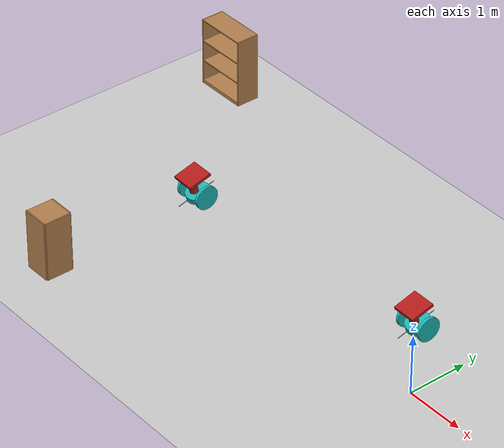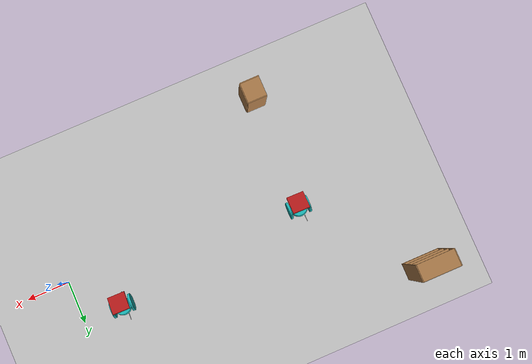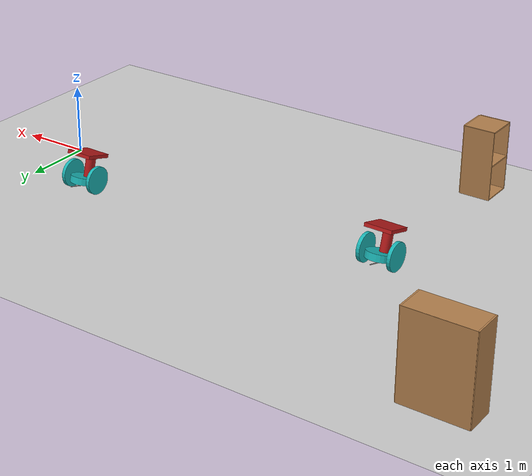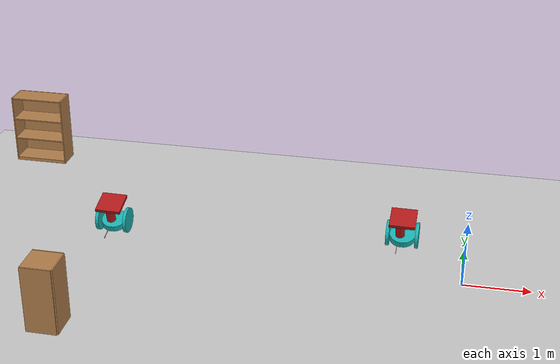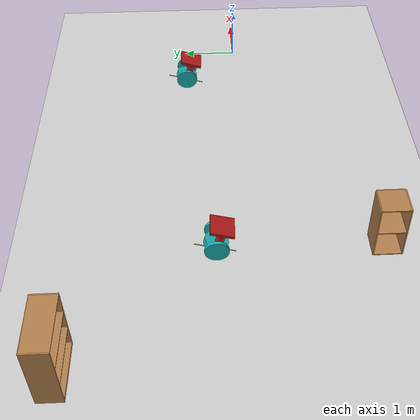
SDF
<sdf version="1.6">
 <world name="default">
  <model name="ground_plane">
   <static>1</static>
   <link name="link">
    <collision name="collision">
     <geometry><plane><normal>0 0 1</normal><size>100 100</size></plane></geometry>
     <surface><friction><ode><mu>100</mu><mu2>50</mu2></ode></friction></surface>
    </collision>
    <visual name="visual">
     <cast_shadows>0</cast_shadows>
     <geometry><plane><normal>0 0 1</normal><size>100 100</size></plane></geometry>
     <material>
      <script><uri>file://media/materials/scripts/gazebo.material</uri><name>Gazebo/Grey</name></script>
     </material>
    </visual>
   </link>
  </model>
  <model name="bookshelf">
   <static>1</static>
   <link name="link">
    <inertial><mass>1</mass></inertial>
    <collision name="back">
     <pose>0 0.005 0.6 0 -0 0</pose>
     <geometry><box><size>0.9 0.01 1.2</size></box></geometry>
    </collision>
    <visual name="visual1">
     <pose>0 0.005 0.6 0 -0 0</pose>
     <geometry><box><size>0.9 0.01 1.2</size></box></geometry>
     <material>
      <script><uri>file://media/materials/scripts/gazebo.material</uri><name>Gazebo/Wood</name></script>
     </material>
    </visual>
    <collision name="left_side">
     <pose>0.45 -0.195 0.6 0 -0 0</pose>
     <geometry><box><size>0.02 0.4 1.2</size></box></geometry>
    </collision>
    <visual name="visual2">
     <pose>0.45 -0.195 0.6 0 -0 0</pose>
     <geometry><box><size>0.02 0.4 1.2</size></box></geometry>
     <material>
      <script><uri>file://media/materials/scripts/gazebo.material</uri><name>Gazebo/Wood</name></script>
     </material>
    </visual>
    <collision name="right_side">
     <pose>-0.45 -0.195 0.6 0 -0 0</pose>
     <geometry><box><size>0.02 0.4 1.2</size></box></geometry>
    </collision>
    <visual name="visual3">
     <pose>-0.45 -0.195 0.6 0 -0 0</pose>
     <geometry><box><size>0.02 0.4 1.2</size></box></geometry>
     <material>
      <script><uri>file://media/materials/scripts/gazebo.material</uri><name>Gazebo/Wood</name></script>
     </material>
    </visual>
    <collision name="bottom">
     <pose>0 -0.195 0.03 0 -0 0</pose>
     <geometry><box><size>0.88 0.4 0.06</size></box></geometry>
    </collision>
    <visual name="visual4">
     <pose>0 -0.195 0.03 0 -0 0</pose>
     <geometry><box><size>0.88 0.4 0.06</size></box></geometry>
     <material>
      <script><uri>file://media/materials/scripts/gazebo.material</uri><name>Gazebo/Wood</name></script>
     </material>
    </visual>
    <collision name="top">
     <pose>0 -0.195 1.19 0 -0 0</pose>
     <geometry><box><size>0.88 0.4 0.02</size></box></geometry>
    </collision>
    <visual name="visual5">
     <pose>0 -0.195 1.19 0 -0 0</pose>
     <geometry><box><size>0.88 0.4 0.02</size></box></geometry>
     <material>
      <script><uri>file://media/materials/scripts/gazebo.material</uri><name>Gazebo/Wood</name></script>
     </material>
    </visual>
    <collision name="low_shelf">
     <pose>0 -0.195 0.43 0 -0 0</pose>
     <geometry><box><size>0.88 0.4 0.02</size></box></geometry>
    </collision>
    <visual name="visual6">
     <pose>0 -0.195 0.43 0 -0 0</pose>
     <geometry><box><size>0.88 0.4 0.02</size></box></geometry>
     <material>
      <script><uri>file://media/materials/scripts/gazebo.material</uri><name>Gazebo/Wood</name></script>
     </material>
    </visual>
    <collision name="high_shelf">
     <pose>0 -0.195 0.8 0 -0 0</pose>
     <geometry><box><size>0.88 0.4 0.02</size></box></geometry>
    </collision>
    <visual name="visual7">
     <pose>0 -0.195 0.8 0 -0 0</pose>
     <geometry><box><size>0.88 0.4 0.02</size></box></geometry>
     <material>
      <script><uri>file://media/materials/scripts/gazebo.material</uri><name>Gazebo/Wood</name></script>
     </material>
    </visual>
   </link>
   <pose>-7.63263 3.03401 0 0 -0 0</pose>
  </model>
  <model name="cabinet">
   <static>1</static>
   <link name="cabinet_bottom_plate">
    <inertial>
     <pose>0 0 -1 0 -0 0</pose>
     <inertia><ixx>2.05</ixx><ixy>0</ixy><ixz>0</ixz><iyy>2.05</iyy><iyz>0</iyz><izz>2.05</izz></inertia>
     <mass>25</mass>
    </inertial>
    <collision name="cabinet_bottom_plate_geom">
     <pose>0 0 0.01 0 -0 0</pose>
     <geometry><box><size>0.45 0.45 0.02</size></box></geometry>
    </collision>
    <visual name="cabinet_bottom_plate_geom_visual">
     <pose>0 0 0.01 0 -0 0</pose>
     <geometry><box><size>0.45 0.45 0.02</size></box></geometry>
     <material>
      <script><uri>file://media/materials/scripts/gazebo.material</uri><name>Gazebo/Wood</name></script>
     </material>
    </visual>
    <collision name="cabinet_bottom_plate_geom_cabinet_back_plate">
     <pose>0.235 0 0.51 0 -0 0</pose>
     <geometry><box><size>0.02 0.45 1.02</size></box></geometry>
    </collision>
    <visual name="cabinet_bottom_plate_geom_cabinet_back_plate_visual">
     <pose>0.235 0 0.51 0 -0 0</pose>
     <geometry><box><size>0.02 0.45 1.02</size></box></geometry>
     <material>
      <script><uri>file://media/materials/scripts/gazebo.material</uri><name>Gazebo/Wood</name></script>
     </material>
    </visual>
    <collision name="cabinet_bottom_plate_geom_cabinet_left_plate">
     <pose>0 0.235 0.51 0 -0 0</pose>
     <geometry><box><size>0.45 0.02 1.02</size></box></geometry>
    </collision>
    <visual name="cabinet_bottom_plate_geom_cabinet_left_plate_visual">
     <pose>0 0.235 0.51 0 -0 0</pose>
     <geometry><box><size>0.45 0.02 1.02</size></box></geometry>
     <material>
      <script><uri>file://media/materials/scripts/gazebo.material</uri><name>Gazebo/Wood</name></script>
     </material>
    </visual>
    <collision name="cabinet_bottom_plate_geom_cabinet_middle_plate">
     <pose>0 0 0.51 0 -0 0</pose>
     <geometry><box><size>0.45 0.45 0.02</size></box></geometry>
    </collision>
    <visual name="cabinet_bottom_plate_geom_cabinet_middle_plate_visual">
     <pose>0 0 0.51 0 -0 0</pose>
     <geometry><box><size>0.45 0.45 0.02</size></box></geometry>
     <material>
      <script><uri>file://media/materials/scripts/gazebo.material</uri><name>Gazebo/Wood</name></script>
     </material>
    </visual>
    <collision name="cabinet_bottom_plate_geom_cabinet_right_plate">
     <pose>0 -0.235 0.51 0 -0 0</pose>
     <geometry><box><size>0.45 0.02 1.02</size></box></geometry>
    </collision>
    <visual name="cabinet_bottom_plate_geom_cabinet_right_plate_visual">
     <pose>0 -0.235 0.51 0 -0 0</pose>
     <geometry><box><size>0.45 0.02 1.02</size></box></geometry>
     <material>
      <script><uri>file://media/materials/scripts/gazebo.material</uri><name>Gazebo/Wood</name></script>
     </material>
    </visual>
    <collision name="cabinet_bottom_plate_geom_cabinet_top_plate">
     <pose>0 0 1.01 0 -0 0</pose>
     <geometry><box><size>0.45 0.45 0.02</size></box></geometry>
    </collision>
    <visual name="cabinet_bottom_plate_geom_cabinet_top_plate_visual">
     <pose>0 0 1.01 0 -0 0</pose>
     <geometry><box><size>0.45 0.45 0.02</size></box></geometry>
     <material>
      <script><uri>file://media/materials/scripts/gazebo.material</uri><name>Gazebo/Wood</name></script>
     </material>
    </visual>
   </link>
   <pose>-5.54527 -2.22271 0 0 -0 0</pose>
  </model>
  <model name="circlebot">
   <link name="link_0">
    <pose>1.06129 -0.214025 0.27147 0 -0 0</pose>
    <inertial>
     <mass>1</mass>
     <inertia><ixx>0.145833</ixx><ixy>0</ixy><ixz>0</ixz><iyy>0.145833</iyy><iyz>0</iyz><izz>0.125</izz></inertia>
    </inertial>
    <visual name="visual">
     <geometry><cylinder><radius>0.2</radius><length>0.1</length></cylinder></geometry>
     <material>
      <lighting>1</lighting>
      <script><uri>file://media/materials/scripts/gazebo.material</uri><name>Gazebo/Grey</name></script>
      <shader type="pixel"><normal_map>__default__</normal_map></shader>
      <ambient>0.3 0.7 0.7 1</ambient>
      <diffuse>0.1 0.7 0.7 1</diffuse>
      <specular>0.01 0.01 0.01 1</specular>
      <emissive>0 0 0 1</emissive>
     </material>
    </visual>
    <collision name="collision">
     <geometry><cylinder><radius>0.2</radius><length>0.1</length></cylinder></geometry>
     <surface>
      <friction>
       <ode><mu>1</mu><mu2>1</mu2><fdir1>0 0 0</fdir1><slip1>0</slip1><slip2>0</slip2></ode>
       <torsional>
        <coefficient>1</coefficient>
        <patch_radius>0</patch_radius>
        <surface_radius>0</surface_radius>
        <use_patch_radius>1</use_patch_radius>
        <ode><slip>0</slip></ode>
       </torsional>
      </friction>
      <bounce><restitution_coefficient>0</restitution_coefficient><threshold>1e+06</threshold></bounce>
      <contact>
       <collide_without_contact>0</collide_without_contact>
       <collide_without_contact_bitmask>1</collide_without_contact_bitmask>
       <collide_bitmask>1</collide_bitmask>
       <ode>
        <soft_cfm>0</soft_cfm>
        <soft_erp>0.2</soft_erp>
        <kp>1e+13</kp>
        <kd>1</kd>
        <max_vel>0.01</max_vel>
        <min_depth>0</min_depth>
       </ode>
       <bullet>
        <split_impulse>1</split_impulse>
        <split_impulse_penetration_threshold>-0.01</split_impulse_penetration_threshold>
        <soft_cfm>0</soft_cfm>
        <soft_erp>0.2</soft_erp>
        <kp>1e+13</kp>
        <kd>1</kd>
       </bullet>
      </contact>
     </surface>
    </collision>
   </link>
   <link name="link_0_0">
    <pose>0.993988 -0.214025 0.213031 -1.5708 0.010835 3e-06</pose>
    <inertial>
     <mass>1</mass>
     <inertia>
      <ixx>0.166667</ixx>
      <ixy>0</ixy>
      <ixz>0</ixz>
      <iyy>0.166667</iyy>
      <iyz>0</iyz>
      <izz>0.166667</izz>
     </inertia>
    </inertial>
    <visual name="visual">
     <geometry><box><size>0.01 0.01 0.7</size></box></geometry>
     <material>
      <lighting>1</lighting>
      <script><uri>file://media/materials/scripts/gazebo.material</uri><name>Gazebo/Grey</name></script>
      <shader type="pixel"><normal_map>__default__</normal_map></shader>
      <ambient>0.3 0.3 0.3 1</ambient>
      <diffuse>0.7 0.7 0.7 1</diffuse>
      <specular>0.01 0.01 0.01 1</specular>
      <emissive>0 0 0 1</emissive>
     </material>
    </visual>
    <collision name="collision">
     <geometry><box><size>0.01 0.01 0.7</size></box></geometry>
     <surface>
      <friction>
       <ode><mu>1</mu><mu2>1</mu2><fdir1>0 0 0</fdir1><slip1>0</slip1><slip2>0</slip2></ode>
       <torsional>
        <coefficient>1</coefficient>
        <patch_radius>0</patch_radius>
        <surface_radius>0</surface_radius>
        <use_patch_radius>1</use_patch_radius>
        <ode><slip>0</slip></ode>
       </torsional>
      </friction>
      <bounce><restitution_coefficient>0</restitution_coefficient><threshold>1e+06</threshold></bounce>
      <contact>
       <collide_without_contact>0</collide_without_contact>
       <collide_without_contact_bitmask>1</collide_without_contact_bitmask>
       <collide_bitmask>1</collide_bitmask>
       <ode>
        <soft_cfm>0</soft_cfm>
        <soft_erp>0.2</soft_erp>
        <kp>1e+13</kp>
        <kd>1</kd>
        <max_vel>0.01</max_vel>
        <min_depth>0</min_depth>
       </ode>
       <bullet>
        <split_impulse>1</split_impulse>
        <split_impulse_penetration_threshold>-0.01</split_impulse_penetration_threshold>
        <soft_cfm>0</soft_cfm>
        <soft_erp>0.2</soft_erp>
        <kp>1e+13</kp>
        <kd>1</kd>
       </bullet>
      </contact>
     </surface>
    </collision>
   </link>
   <link name="link_2">
    <pose>1.28631 -0.214025 0.316464 -0.000138 1.5707 -0.000138</pose>
    <inertial>
     <mass>1</mass>
     <inertia><ixx>0.145833</ixx><ixy>0</ixy><ixz>0</ixz><iyy>0.145833</iyy><iyz>0</iyz><izz>0.125</izz></inertia>
    </inertial>
    <visual name="visual">
     <geometry><cylinder><radius>0.2</radius><length>0.05</length></cylinder></geometry>
     <material>
      <lighting>1</lighting>
      <script><uri>file://media/materials/scripts/gazebo.material</uri><name>Gazebo/Grey</name></script>
      <shader type="pixel"><normal_map>__default__</normal_map></shader>
      <ambient>0.3 0.7 0.7 1</ambient>
      <diffuse>0.1 0.7 0.7 1</diffuse>
      <specular>0.01 0.01 0.01 1</specular>
      <emissive>0 0 0 1</emissive>
     </material>
    </visual>
    <collision name="collision">
     <geometry><cylinder><radius>0.2</radius><length>0.05</length></cylinder></geometry>
     <surface>
      <friction>
       <ode><mu>1</mu><mu2>1</mu2><fdir1>0 0 0</fdir1><slip1>0</slip1><slip2>0</slip2></ode>
       <torsional>
        <coefficient>1</coefficient>
        <patch_radius>0</patch_radius>
        <surface_radius>0</surface_radius>
        <use_patch_radius>1</use_patch_radius>
        <ode><slip>0</slip></ode>
       </torsional>
      </friction>
      <bounce><restitution_coefficient>0</restitution_coefficient><threshold>1e+06</threshold></bounce>
      <contact>
       <collide_without_contact>0</collide_without_contact>
       <collide_without_contact_bitmask>1</collide_without_contact_bitmask>
       <collide_bitmask>1</collide_bitmask>
       <ode>
        <soft_cfm>0</soft_cfm>
        <soft_erp>0.2</soft_erp>
        <kp>1e+13</kp>
        <kd>1</kd>
        <max_vel>0.01</max_vel>
        <min_depth>0</min_depth>
       </ode>
       <bullet>
        <split_impulse>1</split_impulse>
        <split_impulse_penetration_threshold>-0.01</split_impulse_penetration_threshold>
        <soft_cfm>0</soft_cfm>
        <soft_erp>0.2</soft_erp>
        <kp>1e+13</kp>
        <kd>1</kd>
       </bullet>
      </contact>
     </surface>
    </collision>
   </link>
   <link name="link_2_clone">
    <pose>0.836287 -0.214025 0.31647 -0.000138 1.5707 -0.000138</pose>
    <inertial>
     <mass>1</mass>
     <inertia><ixx>0.145833</ixx><ixy>0</ixy><ixz>0</ixz><iyy>0.145833</iyy><iyz>0</iyz><izz>0.125</izz></inertia>
    </inertial>
    <visual name="visual">
     <geometry><cylinder><radius>0.2</radius><length>0.05</length></cylinder></geometry>
     <material>
      <lighting>1</lighting>
      <script><uri>file://media/materials/scripts/gazebo.material</uri><name>Gazebo/Grey</name></script>
      <shader type="pixel"><normal_map>__default__</normal_map></shader>
      <ambient>0.3 0.7 0.7 1</ambient>
      <diffuse>0.1 0.7 0.7 1</diffuse>
      <specular>0.01 0.01 0.01 1</specular>
      <emissive>0 0 0 1</emissive>
     </material>
    </visual>
    <collision name="collision">
     <geometry><cylinder><radius>0.2</radius><length>0.05</length></cylinder></geometry>
     <surface>
      <friction>
       <ode><mu>1</mu><mu2>1</mu2><fdir1>0 0 0</fdir1><slip1>0</slip1><slip2>0</slip2></ode>
       <torsional>
        <coefficient>1</coefficient>
        <patch_radius>0</patch_radius>
        <surface_radius>0</surface_radius>
        <use_patch_radius>1</use_patch_radius>
        <ode><slip>0</slip></ode>
       </torsional>
      </friction>
      <bounce><restitution_coefficient>0</restitution_coefficient><threshold>1e+06</threshold></bounce>
      <contact>
       <collide_without_contact>0</collide_without_contact>
       <collide_without_contact_bitmask>1</collide_without_contact_bitmask>
       <collide_bitmask>1</collide_bitmask>
       <ode>
        <soft_cfm>0</soft_cfm>
        <soft_erp>0.2</soft_erp>
        <kp>1e+13</kp>
        <kd>1</kd>
        <max_vel>0.01</max_vel>
        <min_depth>0</min_depth>
       </ode>
       <bullet>
        <split_impulse>1</split_impulse>
        <split_impulse_penetration_threshold>-0.01</split_impulse_penetration_threshold>
        <soft_cfm>0</soft_cfm>
        <soft_erp>0.2</soft_erp>
        <kp>1e+13</kp>
        <kd>1</kd>
       </bullet>
      </contact>
     </surface>
    </collision>
   </link>
   <link name="link_3">
    <pose>1.02629 -0.249025 0.42147 0 -0 0</pose>
    <inertial>
     <mass>1</mass>
     <inertia><ixx>0.145833</ixx><ixy>0</ixy><ixz>0</ixz><iyy>0.145833</iyy><iyz>0</iyz><izz>0.125</izz></inertia>
    </inertial>
    <visual name="visual">
     <geometry><cylinder><radius>0.07</radius><length>0.4</length></cylinder></geometry>
     <material>
      <lighting>1</lighting>
      <script><uri>file://media/materials/scripts/gazebo.material</uri><name>Gazebo/Grey</name></script>
      <shader type="pixel"><normal_map>__default__</normal_map></shader>
      <ambient>0.7 0.1 0.1 1</ambient>
      <diffuse>0.7 0.1 0.1 1</diffuse>
      <specular>0.01 0.01 0.01 1</specular>
      <emissive>0 0 0 1</emissive>
     </material>
    </visual>
    <collision name="collision">
     <geometry><cylinder><radius>0.07</radius><length>0.4</length></cylinder></geometry>
     <surface>
      <friction>
       <ode><mu>1</mu><mu2>1</mu2><fdir1>0 0 0</fdir1><slip1>0</slip1><slip2>0</slip2></ode>
       <torsional>
        <coefficient>1</coefficient>
        <patch_radius>0</patch_radius>
        <surface_radius>0</surface_radius>
        <use_patch_radius>1</use_patch_radius>
        <ode><slip>0</slip></ode>
       </torsional>
      </friction>
      <bounce><restitution_coefficient>0</restitution_coefficient><threshold>1e+06</threshold></bounce>
      <contact>
       <collide_without_contact>0</collide_without_contact>
       <collide_without_contact_bitmask>1</collide_without_contact_bitmask>
       <collide_bitmask>1</collide_bitmask>
       <ode>
        <soft_cfm>0</soft_cfm>
        <soft_erp>0.2</soft_erp>
        <kp>1e+13</kp>
        <kd>1</kd>
        <max_vel>0.01</max_vel>
        <min_depth>0</min_depth>
       </ode>
       <bullet>
        <split_impulse>1</split_impulse>
        <split_impulse_penetration_threshold>-0.01</split_impulse_penetration_threshold>
        <soft_cfm>0</soft_cfm>
        <soft_erp>0.2</soft_erp>
        <kp>1e+13</kp>
        <kd>1</kd>
       </bullet>
      </contact>
     </surface>
    </collision>
   </link>
   <link name="link_4">
    <pose>1.06129 -0.214025 0.64647 0 -0 0</pose>
    <inertial>
     <mass>1</mass>
     <inertia>
      <ixx>0.166667</ixx>
      <ixy>0</ixy>
      <ixz>0</ixz>
      <iyy>0.166667</iyy>
      <iyz>0</iyz>
      <izz>0.166667</izz>
     </inertia>
    </inertial>
    <visual name="visual">
     <geometry><box><size>0.4 0.4 0.05</size></box></geometry>
     <material>
      <lighting>1</lighting>
      <script><uri>file://media/materials/scripts/gazebo.material</uri><name>Gazebo/Grey</name></script>
      <shader type="pixel"><normal_map>__default__</normal_map></shader>
      <ambient>0.7 0.1 0.1 1</ambient>
      <diffuse>0.7 0.1 0.1 1</diffuse>
      <specular>0.01 0.01 0.01 1</specular>
      <emissive>0 0 0 1</emissive>
     </material>
    </visual>
    <collision name="collision">
     <geometry><box><size>0.4 0.4 0.05</size></box></geometry>
     <surface>
      <friction>
       <ode><mu>1</mu><mu2>1</mu2><fdir1>0 0 0</fdir1><slip1>0</slip1><slip2>0</slip2></ode>
       <torsional>
        <coefficient>1</coefficient>
        <patch_radius>0</patch_radius>
        <surface_radius>0</surface_radius>
        <use_patch_radius>1</use_patch_radius>
        <ode><slip>0</slip></ode>
       </torsional>
      </friction>
      <bounce><restitution_coefficient>0</restitution_coefficient><threshold>1e+06</threshold></bounce>
      <contact>
       <collide_without_contact>0</collide_without_contact>
       <collide_without_contact_bitmask>1</collide_without_contact_bitmask>
       <collide_bitmask>1</collide_bitmask>
       <ode>
        <soft_cfm>0</soft_cfm>
        <soft_erp>0.2</soft_erp>
        <kp>1e+13</kp>
        <kd>1</kd>
        <max_vel>0.01</max_vel>
        <min_depth>0</min_depth>
       </ode>
       <bullet>
        <split_impulse>1</split_impulse>
        <split_impulse_penetration_threshold>-0.01</split_impulse_penetration_threshold>
        <soft_cfm>0</soft_cfm>
        <soft_erp>0.2</soft_erp>
        <kp>1e+13</kp>
        <kd>1</kd>
       </bullet>
      </contact>
     </surface>
    </collision>
   </link>
   <joint name="link_0_JOINT_0_0" type="fixed">
    <parent>link_0</parent>
    <child>link_0_0</child>
    <physics>
     <ode><limit><cfm>0</cfm><erp>0.2</erp></limit><suspension><cfm>0</cfm><erp>0.2</erp></suspension></ode>
    </physics>
   </joint>
   <joint name="link_0_JOINT_0" type="revolute">
    <parent>link_0</parent>
    <child>link_2_clone</child>
    <axis>
     <xyz>0 0 1</xyz>
     <use_parent_model_frame>0</use_parent_model_frame>
     <limit>
      <lower>-1.79769e+308</lower>
      <upper>1.79769e+308</upper>
      <effort>-1</effort>
      <velocity>-1</velocity>
     </limit>
     <dynamics>
      <spring_reference>0</spring_reference>
      <spring_stiffness>0</spring_stiffness>
      <damping>0</damping>
      <friction>0</friction>
     </dynamics>
    </axis>
    <physics>
     <ode><limit><cfm>0</cfm><erp>0.2</erp></limit><suspension><cfm>0</cfm><erp>0.2</erp></suspension></ode>
    </physics>
   </joint>
   <joint name="link_0_JOINT_1" type="revolute">
    <parent>link_0</parent>
    <child>link_2</child>
    <axis>
     <xyz>0 0 1</xyz>
     <use_parent_model_frame>0</use_parent_model_frame>
     <limit>
      <lower>-1.79769e+308</lower>
      <upper>1.79769e+308</upper>
      <effort>-1</effort>
      <velocity>-1</velocity>
     </limit>
     <dynamics>
      <spring_reference>0</spring_reference>
      <spring_stiffness>0</spring_stiffness>
      <damping>0</damping>
      <friction>0</friction>
     </dynamics>
    </axis>
    <physics>
     <ode><limit><cfm>0</cfm><erp>0.2</erp></limit><suspension><cfm>0</cfm><erp>0.2</erp></suspension></ode>
    </physics>
   </joint>
   <joint name="link_0_JOINT_2" type="fixed">
    <parent>link_0</parent>
    <child>link_3</child>
    <physics>
     <ode><limit><cfm>0</cfm><erp>0.2</erp></limit><suspension><cfm>0</cfm><erp>0.2</erp></suspension></ode>
    </physics>
   </joint>
   <joint name="link_3_JOINT_3" type="fixed">
    <parent>link_3</parent>
    <child>link_4</child>
    <physics>
     <ode><limit><cfm>0</cfm><erp>0.2</erp></limit><suspension><cfm>0</cfm><erp>0.2</erp></suspension></ode>
    </physics>
   </joint>
   <static>0</static>
   <pose>-6.55969 0.819403 -0.045944 0.276784 -8e-06 -0.016892</pose>
  </model>
  <model name="circlebot_0">
   <link name="link_0">
    <pose>1.06129 -0.214025 0.27147 0 -0 0</pose>
    <inertial>
     <mass>1</mass>
     <inertia><ixx>0.145833</ixx><ixy>0</ixy><ixz>0</ixz><iyy>0.145833</iyy><iyz>0</iyz><izz>0.125</izz></inertia>
    </inertial>
    <visual name="visual">
     <geometry><cylinder><radius>0.2</radius><length>0.1</length></cylinder></geometry>
     <material>
      <lighting>1</lighting>
      <script><uri>file://media/materials/scripts/gazebo.material</uri><name>Gazebo/Grey</name></script>
      <shader type="pixel"><normal_map>__default__</normal_map></shader>
      <ambient>0.3 0.7 0.7 1</ambient>
      <diffuse>0.1 0.7 0.7 1</diffuse>
      <specular>0.01 0.01 0.01 1</specular>
      <emissive>0 0 0 1</emissive>
     </material>
    </visual>
    <collision name="collision">
     <geometry><cylinder><radius>0.2</radius><length>0.1</length></cylinder></geometry>
     <surface>
      <friction>
       <ode><mu>1</mu><mu2>1</mu2><fdir1>0 0 0</fdir1><slip1>0</slip1><slip2>0</slip2></ode>
       <torsional>
        <coefficient>1</coefficient>
        <patch_radius>0</patch_radius>
        <surface_radius>0</surface_radius>
        <use_patch_radius>1</use_patch_radius>
        <ode><slip>0</slip></ode>
       </torsional>
      </friction>
      <bounce><restitution_coefficient>0</restitution_coefficient><threshold>1e+06</threshold></bounce>
      <contact>
       <collide_without_contact>0</collide_without_contact>
       <collide_without_contact_bitmask>1</collide_without_contact_bitmask>
       <collide_bitmask>1</collide_bitmask>
       <ode>
        <soft_cfm>0</soft_cfm>
        <soft_erp>0.2</soft_erp>
        <kp>1e+13</kp>
        <kd>1</kd>
        <max_vel>0.01</max_vel>
        <min_depth>0</min_depth>
       </ode>
       <bullet>
        <split_impulse>1</split_impulse>
        <split_impulse_penetration_threshold>-0.01</split_impulse_penetration_threshold>
        <soft_cfm>0</soft_cfm>
        <soft_erp>0.2</soft_erp>
        <kp>1e+13</kp>
        <kd>1</kd>
       </bullet>
      </contact>
     </surface>
    </collision>
   </link>
   <link name="link_0_0">
    <pose>0.993988 -0.214025 0.213031 -1.5708 0.010835 3e-06</pose>
    <inertial>
     <mass>1</mass>
     <inertia>
      <ixx>0.166667</ixx>
      <ixy>0</ixy>
      <ixz>0</ixz>
      <iyy>0.166667</iyy>
      <iyz>0</iyz>
      <izz>0.166667</izz>
     </inertia>
    </inertial>
    <visual name="visual">
     <geometry><box><size>0.01 0.01 0.7</size></box></geometry>
     <material>
      <lighting>1</lighting>
      <script><uri>file://media/materials/scripts/gazebo.material</uri><name>Gazebo/Grey</name></script>
      <shader type="pixel"><normal_map>__default__</normal_map></shader>
      <ambient>0.3 0.3 0.3 1</ambient>
      <diffuse>0.7 0.7 0.7 1</diffuse>
      <specular>0.01 0.01 0.01 1</specular>
      <emissive>0 0 0 1</emissive>
     </material>
    </visual>
    <collision name="collision">
     <geometry><box><size>0.01 0.01 0.7</size></box></geometry>
     <surface>
      <friction>
       <ode><mu>1</mu><mu2>1</mu2><fdir1>0 0 0</fdir1><slip1>0</slip1><slip2>0</slip2></ode>
       <torsional>
        <coefficient>1</coefficient>
        <patch_radius>0</patch_radius>
        <surface_radius>0</surface_radius>
        <use_patch_radius>1</use_patch_radius>
        <ode><slip>0</slip></ode>
       </torsional>
      </friction>
      <bounce><restitution_coefficient>0</restitution_coefficient><threshold>1e+06</threshold></bounce>
      <contact>
       <collide_without_contact>0</collide_without_contact>
       <collide_without_contact_bitmask>1</collide_without_contact_bitmask>
       <collide_bitmask>1</collide_bitmask>
       <ode>
        <soft_cfm>0</soft_cfm>
        <soft_erp>0.2</soft_erp>
        <kp>1e+13</kp>
        <kd>1</kd>
        <max_vel>0.01</max_vel>
        <min_depth>0</min_depth>
       </ode>
       <bullet>
        <split_impulse>1</split_impulse>
        <split_impulse_penetration_threshold>-0.01</split_impulse_penetration_threshold>
        <soft_cfm>0</soft_cfm>
        <soft_erp>0.2</soft_erp>
        <kp>1e+13</kp>
        <kd>1</kd>
       </bullet>
      </contact>
     </surface>
    </collision>
   </link>
   <link name="link_2">
    <pose>1.28631 -0.214025 0.316464 -0.000138 1.5707 -0.000138</pose>
    <inertial>
     <mass>1</mass>
     <inertia><ixx>0.145833</ixx><ixy>0</ixy><ixz>0</ixz><iyy>0.145833</iyy><iyz>0</iyz><izz>0.125</izz></inertia>
    </inertial>
    <visual name="visual">
     <geometry><cylinder><radius>0.2</radius><length>0.05</length></cylinder></geometry>
     <material>
      <lighting>1</lighting>
      <script><uri>file://media/materials/scripts/gazebo.material</uri><name>Gazebo/Grey</name></script>
      <shader type="pixel"><normal_map>__default__</normal_map></shader>
      <ambient>0.3 0.7 0.7 1</ambient>
      <diffuse>0.1 0.7 0.7 1</diffuse>
      <specular>0.01 0.01 0.01 1</specular>
      <emissive>0 0 0 1</emissive>
     </material>
    </visual>
    <collision name="collision">
     <geometry><cylinder><radius>0.2</radius><length>0.05</length></cylinder></geometry>
     <surface>
      <friction>
       <ode><mu>1</mu><mu2>1</mu2><fdir1>0 0 0</fdir1><slip1>0</slip1><slip2>0</slip2></ode>
       <torsional>
        <coefficient>1</coefficient>
        <patch_radius>0</patch_radius>
        <surface_radius>0</surface_radius>
        <use_patch_radius>1</use_patch_radius>
        <ode><slip>0</slip></ode>
       </torsional>
      </friction>
      <bounce><restitution_coefficient>0</restitution_coefficient><threshold>1e+06</threshold></bounce>
      <contact>
       <collide_without_contact>0</collide_without_contact>
       <collide_without_contact_bitmask>1</collide_without_contact_bitmask>
       <collide_bitmask>1</collide_bitmask>
       <ode>
        <soft_cfm>0</soft_cfm>
        <soft_erp>0.2</soft_erp>
        <kp>1e+13</kp>
        <kd>1</kd>
        <max_vel>0.01</max_vel>
        <min_depth>0</min_depth>
       </ode>
       <bullet>
        <split_impulse>1</split_impulse>
        <split_impulse_penetration_threshold>-0.01</split_impulse_penetration_threshold>
        <soft_cfm>0</soft_cfm>
        <soft_erp>0.2</soft_erp>
        <kp>1e+13</kp>
        <kd>1</kd>
       </bullet>
      </contact>
     </surface>
    </collision>
   </link>
   <link name="link_2_clone">
    <pose>0.836287 -0.214025 0.31647 -0.000138 1.5707 -0.000138</pose>
    <inertial>
     <mass>1</mass>
     <inertia><ixx>0.145833</ixx><ixy>0</ixy><ixz>0</ixz><iyy>0.145833</iyy><iyz>0</iyz><izz>0.125</izz></inertia>
    </inertial>
    <visual name="visual">
     <geometry><cylinder><radius>0.2</radius><length>0.05</length></cylinder></geometry>
     <material>
      <lighting>1</lighting>
      <script><uri>file://media/materials/scripts/gazebo.material</uri><name>Gazebo/Grey</name></script>
      <shader type="pixel"><normal_map>__default__</normal_map></shader>
      <ambient>0.3 0.7 0.7 1</ambient>
      <diffuse>0.1 0.7 0.7 1</diffuse>
      <specular>0.01 0.01 0.01 1</specular>
      <emissive>0 0 0 1</emissive>
     </material>
    </visual>
    <collision name="collision">
     <geometry><cylinder><radius>0.2</radius><length>0.05</length></cylinder></geometry>
     <surface>
      <friction>
       <ode><mu>1</mu><mu2>1</mu2><fdir1>0 0 0</fdir1><slip1>0</slip1><slip2>0</slip2></ode>
       <torsional>
        <coefficient>1</coefficient>
        <patch_radius>0</patch_radius>
        <surface_radius>0</surface_radius>
        <use_patch_radius>1</use_patch_radius>
        <ode><slip>0</slip></ode>
       </torsional>
      </friction>
      <bounce><restitution_coefficient>0</restitution_coefficient><threshold>1e+06</threshold></bounce>
      <contact>
       <collide_without_contact>0</collide_without_contact>
       <collide_without_contact_bitmask>1</collide_without_contact_bitmask>
       <collide_bitmask>1</collide_bitmask>
       <ode>
        <soft_cfm>0</soft_cfm>
        <soft_erp>0.2</soft_erp>
        <kp>1e+13</kp>
        <kd>1</kd>
        <max_vel>0.01</max_vel>
        <min_depth>0</min_depth>
       </ode>
       <bullet>
        <split_impulse>1</split_impulse>
        <split_impulse_penetration_threshold>-0.01</split_impulse_penetration_threshold>
        <soft_cfm>0</soft_cfm>
        <soft_erp>0.2</soft_erp>
        <kp>1e+13</kp>
        <kd>1</kd>
       </bullet>
      </contact>
     </surface>
    </collision>
   </link>
   <link name="link_3">
    <pose>1.02629 -0.249025 0.42147 0 -0 0</pose>
    <inertial>
     <mass>1</mass>
     <inertia><ixx>0.145833</ixx><ixy>0</ixy><ixz>0</ixz><iyy>0.145833</iyy><iyz>0</iyz><izz>0.125</izz></inertia>
    </inertial>
    <visual name="visual">
     <geometry><cylinder><radius>0.07</radius><length>0.4</length></cylinder></geometry>
     <material>
      <lighting>1</lighting>
      <script><uri>file://media/materials/scripts/gazebo.material</uri><name>Gazebo/Grey</name></script>
      <shader type="pixel"><normal_map>__default__</normal_map></shader>
      <ambient>0.7 0.1 0.1 1</ambient>
      <diffuse>0.7 0.1 0.1 1</diffuse>
      <specular>0.01 0.01 0.01 1</specular>
      <emissive>0 0 0 1</emissive>
     </material>
    </visual>
    <collision name="collision">
     <geometry><cylinder><radius>0.07</radius><length>0.4</length></cylinder></geometry>
     <surface>
      <friction>
       <ode><mu>1</mu><mu2>1</mu2><fdir1>0 0 0</fdir1><slip1>0</slip1><slip2>0</slip2></ode>
       <torsional>
        <coefficient>1</coefficient>
        <patch_radius>0</patch_radius>
        <surface_radius>0</surface_radius>
        <use_patch_radius>1</use_patch_radius>
        <ode><slip>0</slip></ode>
       </torsional>
      </friction>
      <bounce><restitution_coefficient>0</restitution_coefficient><threshold>1e+06</threshold></bounce>
      <contact>
       <collide_without_contact>0</collide_without_contact>
       <collide_without_contact_bitmask>1</collide_without_contact_bitmask>
       <collide_bitmask>1</collide_bitmask>
       <ode>
        <soft_cfm>0</soft_cfm>
        <soft_erp>0.2</soft_erp>
        <kp>1e+13</kp>
        <kd>1</kd>
        <max_vel>0.01</max_vel>
        <min_depth>0</min_depth>
       </ode>
       <bullet>
        <split_impulse>1</split_impulse>
        <split_impulse_penetration_threshold>-0.01</split_impulse_penetration_threshold>
        <soft_cfm>0</soft_cfm>
        <soft_erp>0.2</soft_erp>
        <kp>1e+13</kp>
        <kd>1</kd>
       </bullet>
      </contact>
     </surface>
    </collision>
   </link>
   <link name="link_4">
    <pose>1.06129 -0.214025 0.64647 0 -0 0</pose>
    <inertial>
     <mass>1</mass>
     <inertia>
      <ixx>0.166667</ixx>
      <ixy>0</ixy>
      <ixz>0</ixz>
      <iyy>0.166667</iyy>
      <iyz>0</iyz>
      <izz>0.166667</izz>
     </inertia>
    </inertial>
    <visual name="visual">
     <geometry><box><size>0.4 0.4 0.05</size></box></geometry>
     <material>
      <lighting>1</lighting>
      <script><uri>file://media/materials/scripts/gazebo.material</uri><name>Gazebo/Grey</name></script>
      <shader type="pixel"><normal_map>__default__</normal_map></shader>
      <ambient>0.7 0.1 0.1 1</ambient>
      <diffuse>0.7 0.1 0.1 1</diffuse>
      <specular>0.01 0.01 0.01 1</specular>
      <emissive>0 0 0 1</emissive>
     </material>
    </visual>
    <collision name="collision">
     <geometry><box><size>0.4 0.4 0.05</size></box></geometry>
     <surface>
      <friction>
       <ode><mu>1</mu><mu2>1</mu2><fdir1>0 0 0</fdir1><slip1>0</slip1><slip2>0</slip2></ode>
       <torsional>
        <coefficient>1</coefficient>
        <patch_radius>0</patch_radius>
        <surface_radius>0</surface_radius>
        <use_patch_radius>1</use_patch_radius>
        <ode><slip>0</slip></ode>
       </torsional>
      </friction>
      <bounce><restitution_coefficient>0</restitution_coefficient><threshold>1e+06</threshold></bounce>
      <contact>
       <collide_without_contact>0</collide_without_contact>
       <collide_without_contact_bitmask>1</collide_without_contact_bitmask>
       <collide_bitmask>1</collide_bitmask>
       <ode>
        <soft_cfm>0</soft_cfm>
        <soft_erp>0.2</soft_erp>
        <kp>1e+13</kp>
        <kd>1</kd>
        <max_vel>0.01</max_vel>
        <min_depth>0</min_depth>
       </ode>
       <bullet>
        <split_impulse>1</split_impulse>
        <split_impulse_penetration_threshold>-0.01</split_impulse_penetration_threshold>
        <soft_cfm>0</soft_cfm>
        <soft_erp>0.2</soft_erp>
        <kp>1e+13</kp>
        <kd>1</kd>
       </bullet>
      </contact>
     </surface>
    </collision>
   </link>
   <joint name="link_0_JOINT_0_0" type="fixed">
    <parent>link_0</parent>
    <child>link_0_0</child>
    <physics>
     <ode><limit><cfm>0</cfm><erp>0.2</erp></limit><suspension><cfm>0</cfm><erp>0.2</erp></suspension></ode>
    </physics>
   </joint>
   <joint name="link_0_JOINT_0" type="revolute">
    <parent>link_0</parent>
    <child>link_2_clone</child>
    <axis>
     <xyz>0 0 1</xyz>
     <use_parent_model_frame>0</use_parent_model_frame>
     <limit>
      <lower>-1.79769e+308</lower>
      <upper>1.79769e+308</upper>
      <effort>-1</effort>
      <velocity>-1</velocity>
     </limit>
     <dynamics>
      <spring_reference>0</spring_reference>
      <spring_stiffness>0</spring_stiffness>
      <damping>0</damping>
      <friction>0</friction>
     </dynamics>
    </axis>
    <physics>
     <ode><limit><cfm>0</cfm><erp>0.2</erp></limit><suspension><cfm>0</cfm><erp>0.2</erp></suspension></ode>
    </physics>
   </joint>
   <joint name="link_0_JOINT_1" type="revolute">
    <parent>link_0</parent>
    <child>link_2</child>
    <axis>
     <xyz>0 0 1</xyz>
     <use_parent_model_frame>0</use_parent_model_frame>
     <limit>
      <lower>-1.79769e+308</lower>
      <upper>1.79769e+308</upper>
      <effort>-1</effort>
      <velocity>-1</velocity>
     </limit>
     <dynamics>
      <spring_reference>0</spring_reference>
      <spring_stiffness>0</spring_stiffness>
      <damping>0</damping>
      <friction>0</friction>
     </dynamics>
    </axis>
    <physics>
     <ode><limit><cfm>0</cfm><erp>0.2</erp></limit><suspension><cfm>0</cfm><erp>0.2</erp></suspension></ode>
    </physics>
   </joint>
   <joint name="link_0_JOINT_2" type="fixed">
    <parent>link_0</parent>
    <child>link_3</child>
    <physics>
     <ode><limit><cfm>0</cfm><erp>0.2</erp></limit><suspension><cfm>0</cfm><erp>0.2</erp></suspension></ode>
    </physics>
   </joint>
   <joint name="link_3_JOINT_3" type="fixed">
    <parent>link_3</parent>
    <child>link_4</child>
    <physics>
     <ode><limit><cfm>0</cfm><erp>0.2</erp></limit><suspension><cfm>0</cfm><erp>0.2</erp></suspension></ode>
    </physics>
   </joint>
   <static>0</static>
   <pose>-2.0169 1.281 -0.045948 0.276784 -1.2e-05 -0.014083</pose>
  </model>
 </world>
</sdf>
